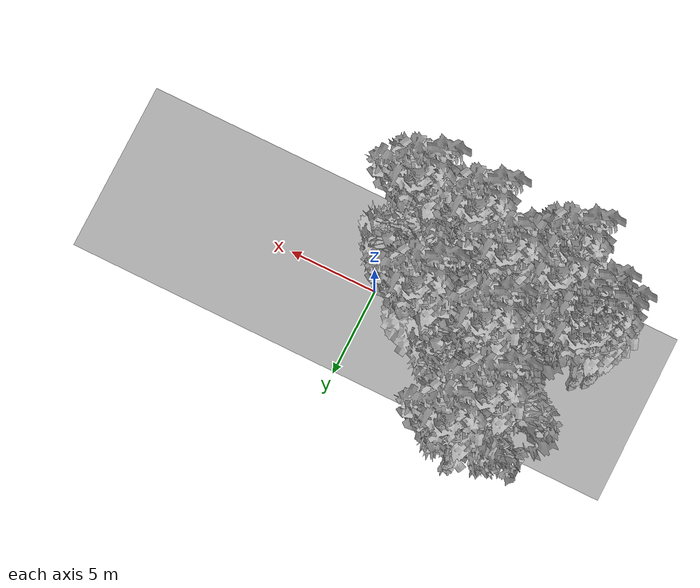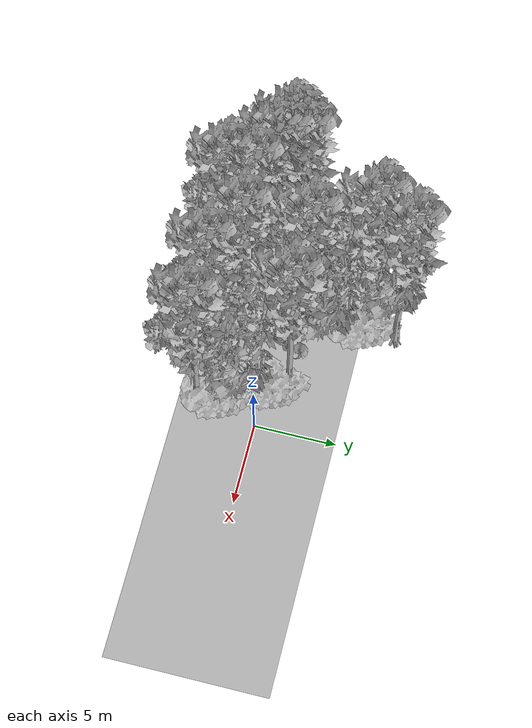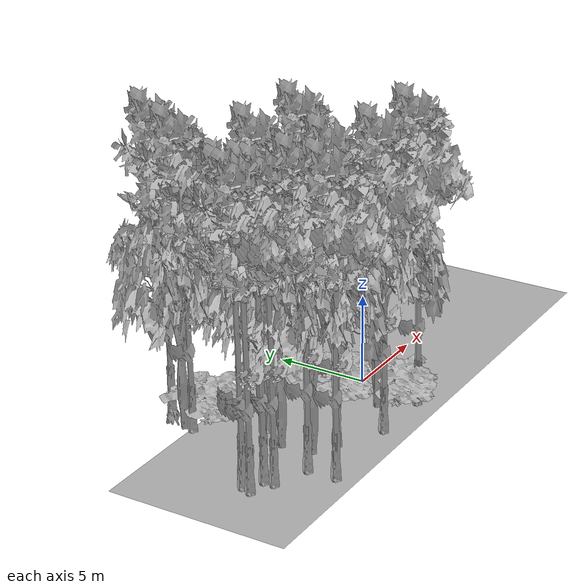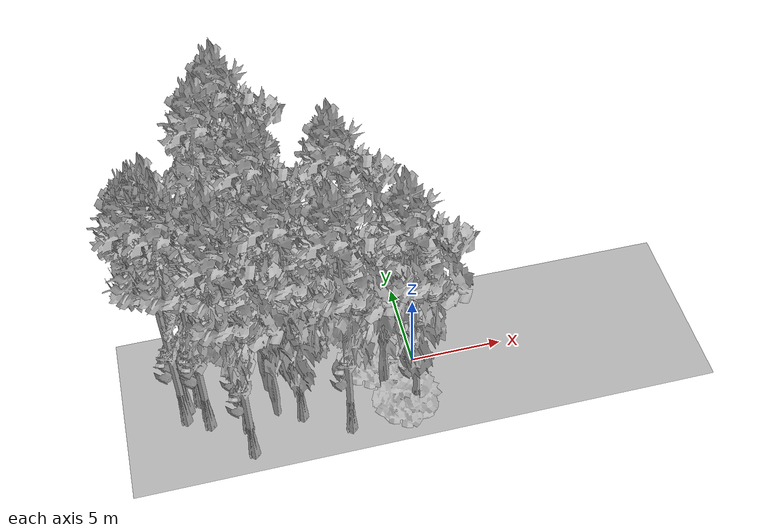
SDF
<sdf version="1.7">
 <world name="default">
  <model name="ground_plane">
   <static>1</static>
   <link name="link">
    <collision name="collision">
     <pose>-50 0 0 0 -0 0</pose>
     <geometry><plane><normal>0 0 1</normal><size>100 100</size></plane></geometry>
     <surface><contact><ode><min_depth>0.01</min_depth><max_vel>0</max_vel></ode></contact></surface>
    </collision>
    <visual name="grass">
     <cast_shadows>0</cast_shadows>
     <geometry>
      <mesh>
       <scale>0.5814285714285714 0.18142857142857144 0.1</scale>
       <uri>file://grass_plane/meshes/grass_plane.dae</uri>
      </mesh>
     </geometry>
    </visual>
   </link>
  </model>
  <model name="Tree 37">
   <static>1</static>
   <pose>-12.485909815656782 -1.0157422724044434 0 1.57079 -0 0</pose>
   <link name="link">
    <collision name="collision">
     <geometry><mesh><scale>3.5 5 3.5</scale><uri>model://tree_9/meshes/tree_9.obj</uri></mesh></geometry>
    </collision>
    <visual name="visual">
     <geometry><mesh><scale>3.5 5 3.5</scale><uri>model://tree_9/meshes/tree_9.obj</uri></mesh></geometry>
    </visual>
   </link>
  </model>
  <model name="Tree 129">
   <static>1</static>
   <pose>-7.7062909971527205 4.635477984318889 0 1.57079 -0 0</pose>
   <link name="link">
    <collision name="collision">
     <geometry><mesh><scale>4 2.5 4</scale><uri>model://tree_1/meshes/tree_1.obj</uri></mesh></geometry>
    </collision>
    <visual name="visual">
     <geometry><mesh><scale>4 2.5 4</scale><uri>model://tree_1/meshes/tree_1.obj</uri></mesh></geometry>
    </visual>
   </link>
  </model>
  <model name="Tree 132">
   <static>1</static>
   <pose>-8.091501355334223 0.029205703367443547 0 1.57079 -0 0</pose>
   <link name="link">
    <collision name="collision">
     <geometry><mesh><scale>3.5 5 3.5</scale><uri>model://tree_2/meshes/tree_2.obj</uri></mesh></geometry>
    </collision>
    <visual name="visual">
     <geometry><mesh><scale>3.5 5 3.5</scale><uri>model://tree_2/meshes/tree_2.obj</uri></mesh></geometry>
    </visual>
   </link>
  </model>
  <model name="Tree 158">
   <static>1</static>
   <pose>-11.362429388838216 -1.0692796420191666 0 1.57079 -0 0</pose>
   <link name="link">
    <collision name="collision">
     <geometry><mesh><scale>3.5 5 3.5</scale><uri>model://tree_9/meshes/tree_9.obj</uri></mesh></geometry>
    </collision>
    <visual name="visual">
     <geometry><mesh><scale>3.5 5 3.5</scale><uri>model://tree_9/meshes/tree_9.obj</uri></mesh></geometry>
    </visual>
   </link>
  </model>
  <model name="Tree 169">
   <static>1</static>
   <pose>-2.082854458118547 -2.007761123628219 0 1.57079 -0 0</pose>
   <link name="link">
    <collision name="collision">
     <geometry><mesh><scale>3.5 5 3.5</scale><uri>model://tree_2/meshes/tree_2.obj</uri></mesh></geometry>
    </collision>
    <visual name="visual">
     <geometry><mesh><scale>3.5 5 3.5</scale><uri>model://tree_2/meshes/tree_2.obj</uri></mesh></geometry>
    </visual>
   </link>
  </model>
  <model name="Tree 182">
   <static>1</static>
   <pose>-11.681712616940231 -0.04561490810903557 0 1.57079 -0 0</pose>
   <link name="link">
    <collision name="collision">
     <geometry><mesh><scale>3.5 5 3.5</scale><uri>model://tree_9/meshes/tree_9.obj</uri></mesh></geometry>
    </collision>
    <visual name="visual">
     <geometry><mesh><scale>3.5 5 3.5</scale><uri>model://tree_9/meshes/tree_9.obj</uri></mesh></geometry>
    </visual>
   </link>
  </model>
  <model name="Tree 187">
   <static>1</static>
   <pose>-1.2530798707683104 -2.6732403253260077 0 1.57079 -0 0</pose>
   <link name="link">
    <collision name="collision">
     <geometry><mesh><scale>4 2.5 4</scale><uri>model://tree_1/meshes/tree_1.obj</uri></mesh></geometry>
    </collision>
    <visual name="visual">
     <geometry><mesh><scale>4 2.5 4</scale><uri>model://tree_1/meshes/tree_1.obj</uri></mesh></geometry>
    </visual>
   </link>
  </model>
  <model name="Tree 225">
   <static>1</static>
   <pose>-4.156782898149402 -3.5972067783803023 0 1.57079 -0 0</pose>
   <link name="link">
    <collision name="collision">
     <geometry><mesh><scale>3.5 5 3.5</scale><uri>model://tree_9/meshes/tree_9.obj</uri></mesh></geometry>
    </collision>
    <visual name="visual">
     <geometry><mesh><scale>3.5 5 3.5</scale><uri>model://tree_9/meshes/tree_9.obj</uri></mesh></geometry>
    </visual>
   </link>
  </model>
  <model name="Tree 262">
   <static>1</static>
   <pose>-7.6492903804339605 6.901346823452769 0 1.57079 -0 0</pose>
   <link name="link">
    <collision name="collision">
     <geometry><mesh><scale>3.5 5 3.5</scale><uri>model://tree_9/meshes/tree_9.obj</uri></mesh></geometry>
    </collision>
    <visual name="visual">
     <geometry><mesh><scale>3.5 5 3.5</scale><uri>model://tree_9/meshes/tree_9.obj</uri></mesh></geometry>
    </visual>
   </link>
  </model>
  <model name="Tree 287">
   <static>1</static>
   <pose>-0.7145885665230693 -3.6707958773254656 0 1.57079 -0 0</pose>
   <link name="link">
    <collision name="collision">
     <geometry><mesh><scale>3.5 5 3.5</scale><uri>model://tree_9/meshes/tree_9.obj</uri></mesh></geometry>
    </collision>
    <visual name="visual">
     <geometry><mesh><scale>3.5 5 3.5</scale><uri>model://tree_9/meshes/tree_9.obj</uri></mesh></geometry>
    </visual>
   </link>
  </model>
  <model name="Tree 291">
   <static>1</static>
   <pose>-6.994129669058758 1.4719316493339463 0 1.57079 -0 0</pose>
   <link name="link">
    <collision name="collision">
     <geometry><mesh><scale>3.5 5 3.5</scale><uri>model://tree_9/meshes/tree_9.obj</uri></mesh></geometry>
    </collision>
    <visual name="visual">
     <geometry><mesh><scale>3.5 5 3.5</scale><uri>model://tree_9/meshes/tree_9.obj</uri></mesh></geometry>
    </visual>
   </link>
  </model>
  <model name="Tree 342">
   <static>1</static>
   <pose>-9.410730271922645 -2.334376915522938 0 1.57079 -0 0</pose>
   <link name="link">
    <collision name="collision">
     <geometry><mesh><scale>3.5 5 3.5</scale><uri>model://tree_9/meshes/tree_9.obj</uri></mesh></geometry>
    </collision>
    <visual name="visual">
     <geometry><mesh><scale>3.5 5 3.5</scale><uri>model://tree_9/meshes/tree_9.obj</uri></mesh></geometry>
    </visual>
   </link>
  </model>
  <model name="Tree 378">
   <static>1</static>
   <pose>-7.429012420256193 1.5681425698302895 0 1.57079 -0 0</pose>
   <link name="link">
    <collision name="collision">
     <geometry><mesh><scale>3.5 5 3.5</scale><uri>model://tree_2/meshes/tree_2.obj</uri></mesh></geometry>
    </collision>
    <visual name="visual">
     <geometry><mesh><scale>3.5 5 3.5</scale><uri>model://tree_2/meshes/tree_2.obj</uri></mesh></geometry>
    </visual>
   </link>
  </model>
  <model name="Tree 404">
   <static>1</static>
   <pose>-8.866950335222043 4.767560895172018 0 1.57079 -0 0</pose>
   <link name="link">
    <collision name="collision">
     <geometry><mesh><scale>3.5 5 3.5</scale><uri>model://tree_9/meshes/tree_9.obj</uri></mesh></geometry>
    </collision>
    <visual name="visual">
     <geometry><mesh><scale>3.5 5 3.5</scale><uri>model://tree_9/meshes/tree_9.obj</uri></mesh></geometry>
    </visual>
   </link>
  </model>
  <model name="Tree 425">
   <static>1</static>
   <pose>-6.51452682393942 -2.2587178044527683 0 1.57079 -0 0</pose>
   <link name="link">
    <collision name="collision">
     <geometry><mesh><scale>3.5 5 3.5</scale><uri>model://tree_9/meshes/tree_9.obj</uri></mesh></geometry>
    </collision>
    <visual name="visual">
     <geometry><mesh><scale>3.5 5 3.5</scale><uri>model://tree_9/meshes/tree_9.obj</uri></mesh></geometry>
    </visual>
   </link>
  </model>
  <model name="Tree 442">
   <static>1</static>
   <pose>-11.31201395174228 -1.620197240226556 0 1.57079 -0 0</pose>
   <link name="link">
    <collision name="collision">
     <geometry><mesh><scale>3.5 5 3.5</scale><uri>model://tree_9/meshes/tree_9.obj</uri></mesh></geometry>
    </collision>
    <visual name="visual">
     <geometry><mesh><scale>3.5 5 3.5</scale><uri>model://tree_9/meshes/tree_9.obj</uri></mesh></geometry>
    </visual>
   </link>
  </model>
  <model name="Tree 443">
   <static>1</static>
   <pose>-8.955422722277255 5.26560700336891 0 1.57079 -0 0</pose>
   <link name="link">
    <collision name="collision">
     <geometry><mesh><scale>3.5 5 3.5</scale><uri>model://tree_2/meshes/tree_2.obj</uri></mesh></geometry>
    </collision>
    <visual name="visual">
     <geometry><mesh><scale>3.5 5 3.5</scale><uri>model://tree_2/meshes/tree_2.obj</uri></mesh></geometry>
    </visual>
   </link>
  </model>
  <model name="Tree 457">
   <static>1</static>
   <pose>-7.853715179588043 -1.636080322812031 0 1.57079 -0 0</pose>
   <link name="link">
    <collision name="collision">
     <geometry><mesh><scale>3.5 5 3.5</scale><uri>model://tree_2/meshes/tree_2.obj</uri></mesh></geometry>
    </collision>
    <visual name="visual">
     <geometry><mesh><scale>3.5 5 3.5</scale><uri>model://tree_2/meshes/tree_2.obj</uri></mesh></geometry>
    </visual>
   </link>
  </model>
  <model name="Tree 458">
   <static>1</static>
   <pose>-3.1104263503948673 1.376318429692482 0 1.57079 -0 0</pose>
   <link name="link">
    <collision name="collision">
     <geometry><mesh><scale>3.5 5 3.5</scale><uri>model://tree_9/meshes/tree_9.obj</uri></mesh></geometry>
    </collision>
    <visual name="visual">
     <geometry><mesh><scale>3.5 5 3.5</scale><uri>model://tree_9/meshes/tree_9.obj</uri></mesh></geometry>
    </visual>
   </link>
  </model>
  <model name="Tree 463">
   <static>1</static>
   <pose>-9.35111280631935 -3.8756905762559626 0 1.57079 -0 0</pose>
   <link name="link">
    <collision name="collision">
     <geometry><mesh><scale>3.5 5 3.5</scale><uri>model://tree_9/meshes/tree_9.obj</uri></mesh></geometry>
    </collision>
    <visual name="visual">
     <geometry><mesh><scale>3.5 5 3.5</scale><uri>model://tree_9/meshes/tree_9.obj</uri></mesh></geometry>
    </visual>
   </link>
  </model>
  <model name="Tree 479">
   <static>1</static>
   <pose>-6.758369056453127 1.856498264830556 0 1.57079 -0 0</pose>
   <link name="link">
    <collision name="collision">
     <geometry><mesh><scale>3.5 5 3.5</scale><uri>model://tree_2/meshes/tree_2.obj</uri></mesh></geometry>
    </collision>
    <visual name="visual">
     <geometry><mesh><scale>3.5 5 3.5</scale><uri>model://tree_2/meshes/tree_2.obj</uri></mesh></geometry>
    </visual>
   </link>
  </model>
  <model name="Tree 499">
   <static>1</static>
   <pose>-12.29180864906872 -0.4596937997245316 0 1.57079 -0 0</pose>
   <link name="link">
    <collision name="collision">
     <geometry><mesh><scale>3.5 5 3.5</scale><uri>model://tree_9/meshes/tree_9.obj</uri></mesh></geometry>
    </collision>
    <visual name="visual">
     <geometry><mesh><scale>3.5 5 3.5</scale><uri>model://tree_9/meshes/tree_9.obj</uri></mesh></geometry>
    </visual>
   </link>
  </model>
  <model name="Tree 528">
   <static>1</static>
   <pose>-2.59439052910016 0.19696818376773706 0 1.57079 -0 0</pose>
   <link name="link">
    <collision name="collision">
     <geometry><mesh><scale>4 2.5 4</scale><uri>model://tree_1/meshes/tree_1.obj</uri></mesh></geometry>
    </collision>
    <visual name="visual">
     <geometry><mesh><scale>4 2.5 4</scale><uri>model://tree_1/meshes/tree_1.obj</uri></mesh></geometry>
    </visual>
   </link>
  </model>
 </world>
</sdf>
